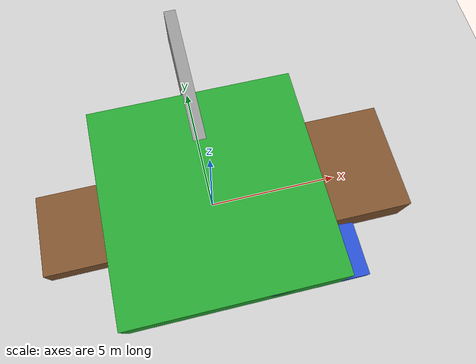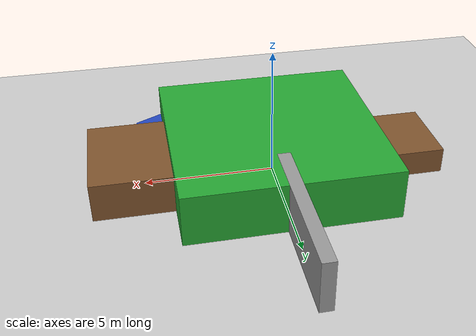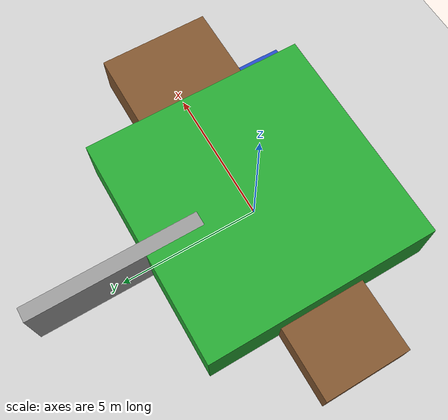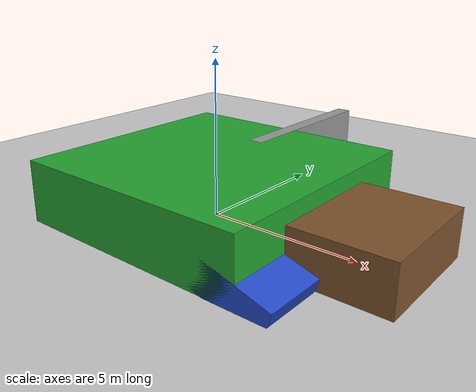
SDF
<sdf version='1.7'>
  <world name='default'>
    <light name='sun' type='directional'>
      <cast_shadows>1</cast_shadows>
      <pose>0 0 50 0 0 0</pose>
      <diffuse>0.8 0.8 0.8 1</diffuse>
      <specular>0.2 0.2 0.2 1</specular>
      <attenuation>
        <range>1000</range>
        <constant>0.9</constant>
        <linear>0.01</linear>
        <quadratic>0.001</quadratic>
      </attenuation>
      <direction>-0.5 0.1 -0.9</direction>
    </light>

    <!-- Ground plane - visual only, no collision (hills provide collision) -->
    <model name='ground_plane'>
      <static>1</static>
      <link name='link'>
        <visual name='visual'>
          <geometry>
            <plane>
              <normal>0 0 1</normal>
              <size>100 100</size>
            </plane>
          </geometry>
          <material>
            <script>
              <uri>file://media/materials/scripts/gazebo.material</uri>
              <name>Gazebo/Grey</name>
            </script>
          </material>
        </visual>
      </link>
    </model>

    <!-- Large hill at origin (0, 0) height 2m - CENTER of camera view -->
    <model name='hill_center'>
      <static>1</static>
      <link name='link'>
        <collision name='collision'>
          <geometry>
            <box>
              <size>8 8 2.0</size>
            </box>
          </geometry>
          <pose>0 0 1.0 0 0 0</pose>
        </collision>
        <visual name='visual'>
          <geometry>
            <box>
              <size>8 8 2.0</size>
            </box>
          </geometry>
          <pose>0 0 1.0 0 0 0</pose>
          <material>
            <script>
              <uri>file://media/materials/scripts/gazebo.material</uri>
              <name>Gazebo/Green</name>
            </script>
          </material>
        </visual>
      </link>
      <pose>0 0 0 0 0 0</pose>
    </model>

    <!-- Elevated platform at (5, 0) height 1.5m -->
    <model name='hill_east'>
      <static>1</static>
      <link name='link'>
        <collision name='collision'>
          <geometry>
            <box>
              <size>4 4 1.5</size>
            </box>
          </geometry>
          <pose>0 0 0.75 0 0 0</pose>
        </collision>
        <visual name='visual'>
          <geometry>
            <box>
              <size>4 4 1.5</size>
            </box>
          </geometry>
          <pose>0 0 0.75 0 0 0</pose>
          <material>
            <script>
              <uri>file://media/materials/scripts/gazebo.material</uri>
              <name>Gazebo/Brown</name>
            </script>
          </material>
        </visual>
      </link>
      <pose>5 0 0 0 0 0</pose>
    </model>

    <!-- Elevated platform at (-5, 0) height 1.0m -->
    <model name='hill_west'>
      <static>1</static>
      <link name='link'>
        <collision name='collision'>
          <geometry>
            <box>
              <size>3 3 1.0</size>
            </box>
          </geometry>
          <pose>0 0 0.5 0 0 0</pose>
        </collision>
        <visual name='visual'>
          <geometry>
            <box>
              <size>3 3 1.0</size>
            </box>
          </geometry>
          <pose>0 0 0.5 0 0 0</pose>
          <material>
            <script>
              <uri>file://media/materials/scripts/gazebo.material</uri>
              <name>Gazebo/Brown</name>
            </script>
          </material>
        </visual>
      </link>
      <pose>-5 0 0 0 0 0</pose>
    </model>

    <!-- Wall at (0, 5) height 2m -->
    <model name='wall_north'>
      <static>1</static>
      <link name='link'>
        <collision name='collision'>
          <geometry>
            <box>
              <size>0.5 6 2.0</size>
            </box>
          </geometry>
          <pose>0 0 1.0 0 0 0</pose>
        </collision>
        <visual name='visual'>
          <geometry>
            <box>
              <size>0.5 6 2.0</size>
            </box>
          </geometry>
          <pose>0 0 1.0 0 0 0</pose>
          <material>
            <script>
              <uri>file://media/materials/scripts/gazebo.material</uri>
              <name>Gazebo/Grey</name>
            </script>
          </material>
        </visual>
      </link>
      <pose>0 5 0 0 0 0</pose>
    </model>

    <!-- Steep ramp at (3, -3) -->
    <model name='ramp1'>
      <static>1</static>
      <link name='link'>
        <collision name='collision'>
          <geometry>
            <box>
              <size>4 2 1.0</size>
            </box>
          </geometry>
          <pose>0 0 0.5 0 0.3 0</pose>
        </collision>
        <visual name='visual'>
          <geometry>
            <box>
              <size>4 2 1.0</size>
            </box>
          </geometry>
          <pose>0 0 0.5 0 0.3 0</pose>
          <material>
            <script>
              <uri>file://media/materials/scripts/gazebo.material</uri>
              <name>Gazebo/Blue</name>
            </script>
          </material>
        </visual>
      </link>
      <pose>3 -3 0 0 0 0</pose>
    </model>

    <gravity>0 0 -9.8</gravity>
    <physics type='ode'>
      <max_step_size>0.001</max_step_size>
      <real_time_factor>1</real_time_factor>
      <real_time_update_rate>1000</real_time_update_rate>
    </physics>
    <scene>
      <ambient>0.4 0.4 0.4 1</ambient>
      <background>0.7 0.7 0.7 1</background>
      <shadows>1</shadows>
    </scene>
  </world>
</sdf>
